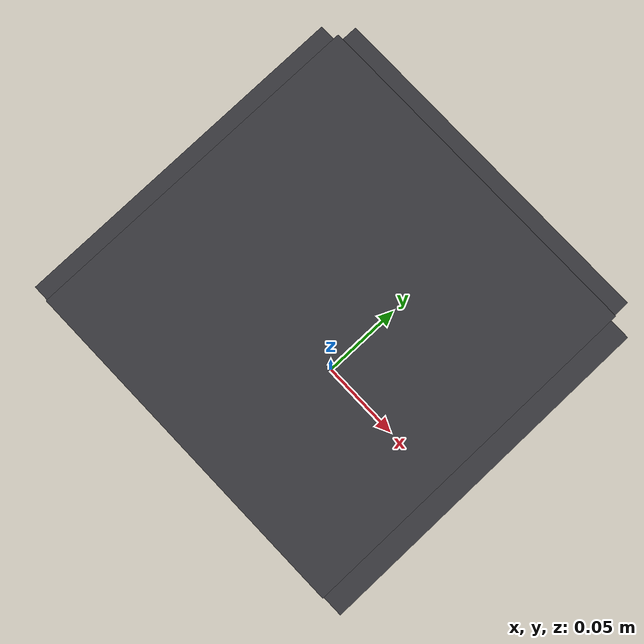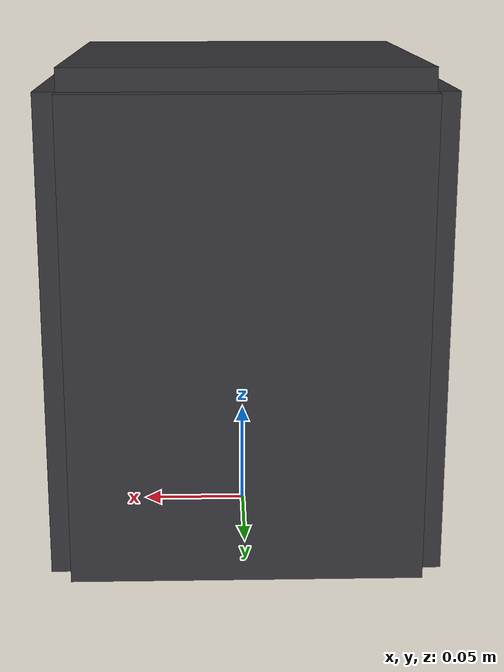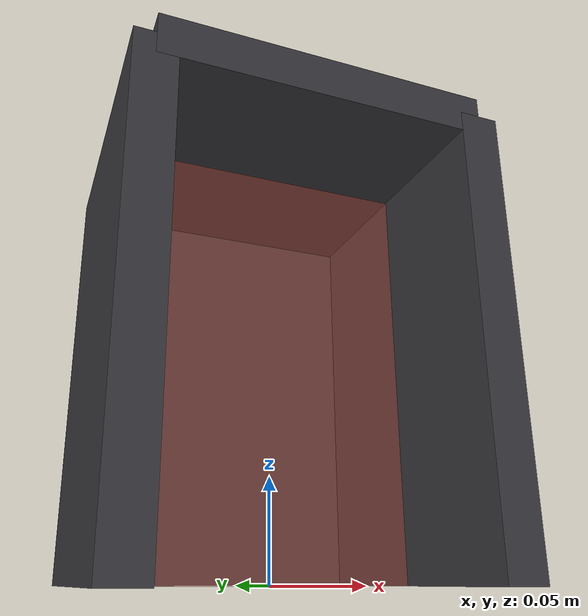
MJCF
<?xml version="1.0" encoding="utf-8"?>
<mujoco model="fabric_flammability_tester">
  <compiler angle="radian" autolimits="true"/>
  <default>
    <default class="body"><geom contype="1" conaffinity="1"/></default>
  </default>
  <worldbody>
    <body name="base">
      <geom type="box" size="0.08 0.01 0.11" pos="0 0.08 0.11" rgba="0.2 0.2 0.22 1" class="body"/>
      <geom type="box" size="0.01 0.08 0.11" pos="-0.08 0 0.11" rgba="0.2 0.2 0.22 1" class="body"/>
      <geom type="box" size="0.01 0.08 0.11" pos="0.08 0 0.11" rgba="0.2 0.2 0.22 1" class="body"/>
      <geom type="box" size="0.08 0.08 0.01" pos="0 0 0.22" rgba="0.2 0.2 0.22 1" class="body"/>
      <body name="door" pos="-0.08 0.0 0.11">
        <joint name="door_joint" type="hinge" axis="0 0 1" range="0 1.8" damping="0.6" frictionloss="0.3"/>
  <geom type="box" size="0.08 0.005 0.11" pos="0.08 0 0" rgba="0.9 0.3 0.2 0.3" class="body"/>
      </body>
    </body>
  </worldbody>
</mujoco>
